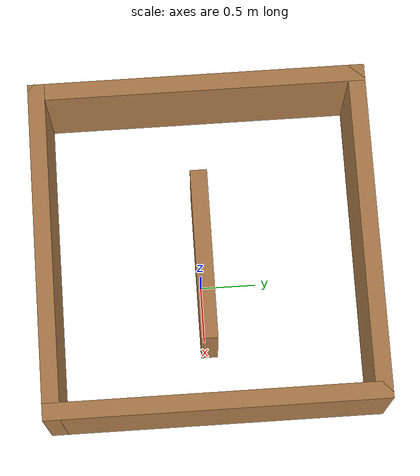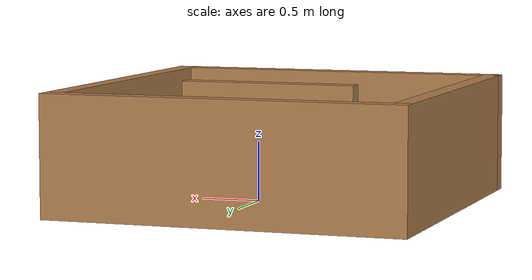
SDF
<?xml version='1.0'?>
<sdf version='1.6'>
  <model name='Trial_Room'>
    <pose frame=''>-0.235 0.071 0 0 -0 0</pose>
    <link name='Wall_0'>
      <collision name='Wall_0_Collision'>
        <geometry>
          <box>
            <size>1.5 0.15 1</size>
          </box>
        </geometry>
        <pose frame=''>0 0 0.5 0 -0 0</pose>
      </collision>
      <visual name='Wall_0_Visual'>
        <pose frame=''>0 0 0.5 0 -0 0</pose>
        <geometry>
          <box>
            <size>1.5 0.15 1</size>
          </box>
        </geometry>
        <material>
          <script>
            <uri>file://media/materials/scripts/gazebo.material</uri>
            <name>Gazebo/Wood</name>
          </script>
          <ambient>1 1 1 1</ambient>
        </material>
      </visual>
      <pose frame=''>0.13 -0.035 0 0 -0 0</pose>
    </link>
    <link name='Wall_2'>
      <collision name='Wall_2_Collision'>
        <geometry>
          <box>
            <size>3 0.15 1</size>
          </box>
        </geometry>
        <pose frame=''>0 0 0.5 0 -0 0</pose>
      </collision>
      <visual name='Wall_2_Visual'>
        <pose frame=''>0 0 0.5 0 -0 0</pose>
        <geometry>
          <box>
            <size>3 0.15 1</size>
          </box>
        </geometry>
        <material>
          <script>
            <uri>file://media/materials/scripts/gazebo.material</uri>
            <name>Gazebo/Wood</name>
          </script>
          <ambient>1 1 1 1</ambient>
        </material>
      </visual>
      <pose frame=''>0 1.425 0 0 -0 0</pose>
    </link>
    <link name='Wall_3'>
      <collision name='Wall_3_Collision'>
        <geometry>
          <box>
            <size>3 0.15 1</size>
          </box>
        </geometry>
        <pose frame=''>0 0 0.5 0 -0 0</pose>
      </collision>
      <visual name='Wall_3_Visual'>
        <pose frame=''>0 0 0.5 0 -0 0</pose>
        <geometry>
          <box>
            <size>3 0.15 1</size>
          </box>
        </geometry>
        <material>
          <script>
            <uri>file://media/materials/scripts/gazebo.material</uri>
            <name>Gazebo/Wood</name>
          </script>
          <ambient>1 1 1 1</ambient>
        </material>
      </visual>
      <pose frame=''>1.425 0 0 0 0 -1.5708</pose>
    </link>
    <link name='Wall_4'>
      <collision name='Wall_4_Collision'>
        <geometry>
          <box>
            <size>3 0.15 1</size>
          </box>
        </geometry>
        <pose frame=''>0 0 0.5 0 -0 0</pose>
      </collision>
      <visual name='Wall_4_Visual'>
        <pose frame=''>0 0 0.5 0 -0 0</pose>
        <geometry>
          <box>
            <size>3 0.15 1</size>
          </box>
        </geometry>
        <material>
          <script>
            <uri>file://media/materials/scripts/gazebo.material</uri>
            <name>Gazebo/Wood</name>
          </script>
          <ambient>1 1 1 1</ambient>
        </material>
      </visual>
      <pose frame=''>0 -1.425 0 0 -0 3.14159</pose>
    </link>
    <link name='Wall_5'>
      <collision name='Wall_5_Collision'>
        <geometry>
          <box>
            <size>3 0.15 1</size>
          </box>
        </geometry>
        <pose frame=''>0 0 0.5 0 -0 0</pose>
      </collision>
      <visual name='Wall_5_Visual'>
        <pose frame=''>0 0 0.5 0 -0 0</pose>
        <geometry>
          <box>
            <size>3 0.15 1</size>
          </box>
        </geometry>
        <material>
          <script>
            <uri>file://media/materials/scripts/gazebo.material</uri>
            <name>Gazebo/Wood</name>
          </script>
          <ambient>1 1 1 1</ambient>
        </material>
      </visual>
      <pose frame=''>-1.425 0 0 0 -0 1.5708</pose>
    </link>
    <static>1</static>
  </model>
</sdf>
